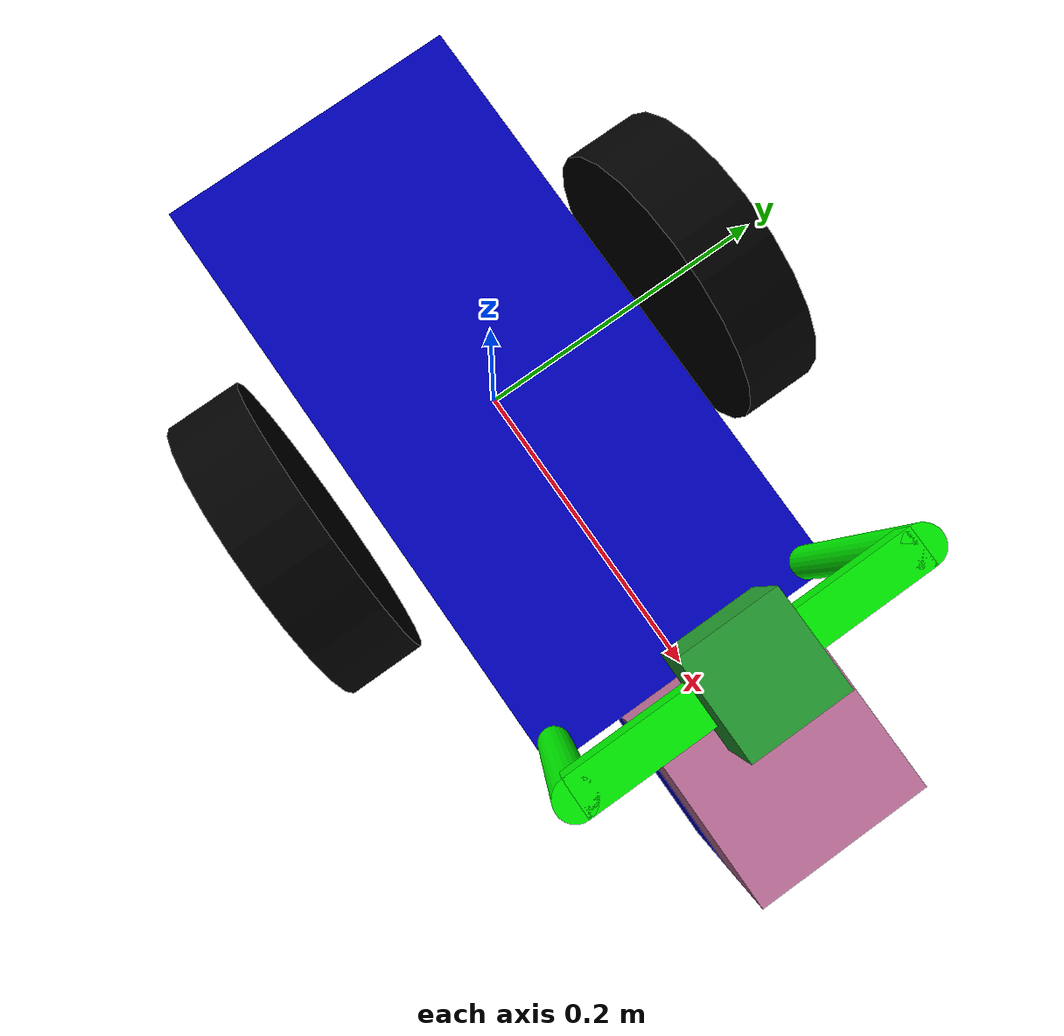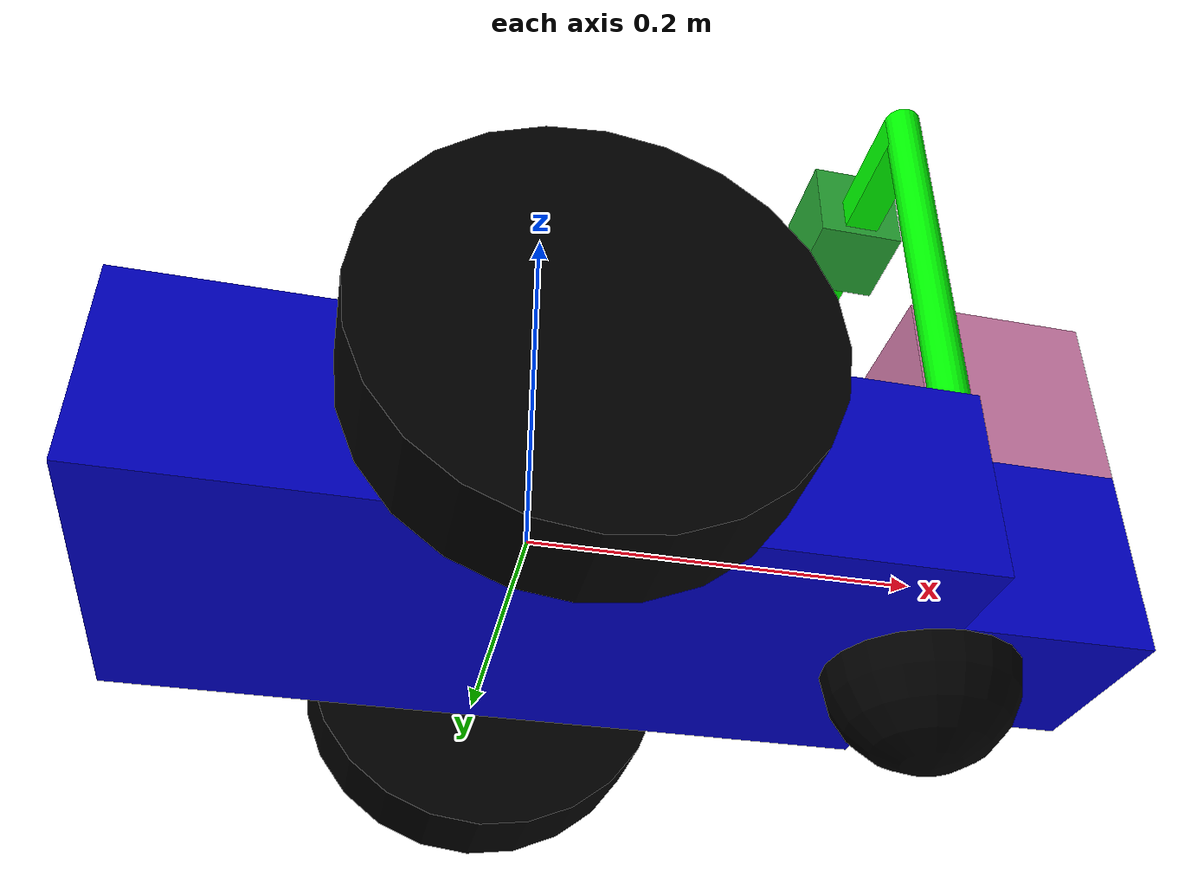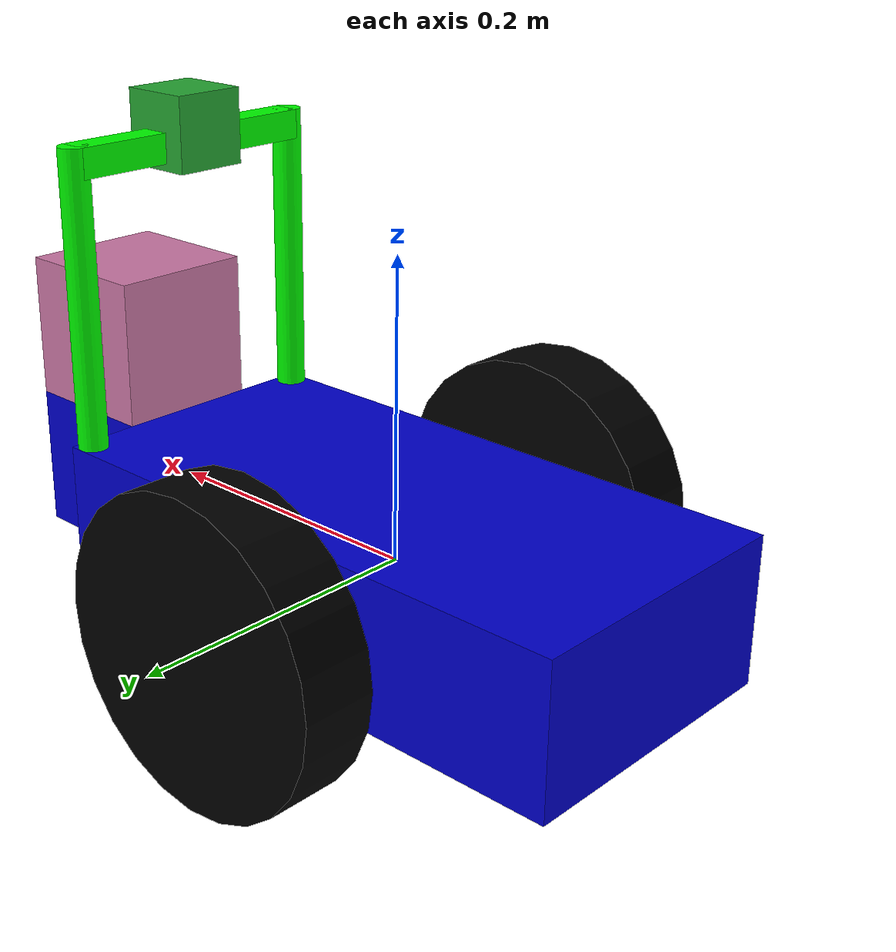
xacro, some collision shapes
<?xml version='1.0'?>

<robot name="sg_bot" xmlns:xacro="http://www.ros.org/wiki/xacro">

  <xacro:include filename="$(find sg_bot)/urdf/sg_bot.gazebo"/>

  <link name="robot_footprint"></link>

  <joint name="robot_footprint_joint" type="fixed">
    <origin xyz="0 0 0" rpy="0 0 0" />
    <parent link="robot_footprint"/>
    <child link="chassis" />
  </joint>

  <material name="blue">
    <color rgba="0 0 0.8 1"/>
  </material>
  <material name="green">
    <color rgba="0 1 0 1"/>
  </material>
  <material name="black">
    <color rgba="0 0 0 1"/>
  </material>
  <material name="white">
    <color rgba="1 1 1 1"/>
  </material>

  <link name='chassis'>
    <pose>0 0 0.1 0 0 0</pose>

    <inertial>
      <mass value="12.0"/>
      <origin xyz="0 0 0" rpy=" 0 0 0"/>
      <inertia
          ixx="0.1" ixy="0" ixz="0"
          iyy="0.1" iyz="0"
          izz="0.1"
      />
    </inertial>

    <collision name='collision'>
      <origin xyz="0 0 0" rpy=" 0 0 0"/>
      <geometry>
        <box size=".4 .2 .1"/>
      </geometry>
    </collision>

    <visual name='chassis_visual'>
      <origin xyz="0 0 0" rpy=" 0 0 0"/>
      <geometry>
        <box size=".4 .2 .1"/>
      </geometry>
      <material name="blue"/>
    </visual>

    <visual name='front_bump_visual'>
      <origin xyz="0.25 0 0" rpy=" 0 0 0"/>
      <geometry>
        <box size=".1 .1 .1"/>
      </geometry>
      <material name="blue"/>
    </visual>

    <collision name='front_bump_collision'>
      <origin xyz="0.25 0 0" rpy=" 0 0 0"/>
      <geometry>
        <box size=".1 .1 .1"/>
      </geometry>
    </collision>

    <visual name='front_left_cylinder_visual'>
	  <origin xyz="0.19 0.09 0.15" rpy=" 0 0 0"/>
      <geometry>
         <cylinder length="0.2" radius="0.01"/>
      </geometry>
      <material name="green"/>
    </visual>

	<collision name='front_left_cylinder_collision'>
      <origin xyz="0.19 0.09 0.15" rpy=" 0 0 0"/>
      <geometry>
        <cylinder length="0.2" radius="0.01"/>
      </geometry>
    </collision>

    <visual name='front_right_cylinder_visual'>
	  <origin xyz="0.19 -0.09 0.15" rpy=" 0 0 0"/>
      <geometry>
         <cylinder length="0.2" radius="0.01"/>
      </geometry>
      <material name="green"/>
    </visual>

	<collision name='front_right_cylinder_collision'>
      <origin xyz="0.19 -0.09 0.15" rpy=" 0 0 0"/>
      <geometry>
        <cylinder length="0.2" radius="0.01"/>
      </geometry>
    </collision>

    <visual name='front_top_box_visual'>
	  <origin xyz="0.19 0.0 0.24" rpy=" 0 0 -1.57075"/>
      <geometry>
         <box size=".18 .02 .02"/>
      </geometry>
      <material name="green"/>
    </visual>

	<collision name='front_top_box_collision'>
      <origin xyz="0.19 0.0 0.24" rpy=" 0 0 -1.57075"/>
      <geometry>
        <box size=".18 .02 .02"/>
      </geometry>
    </collision>

  </link>

  <link name="caster_wheel">
    <collision name='front_caster_collision'>
      <geometry>
        <sphere radius="0.0499"/>
      </geometry>
    </collision>

    <visual name='front_caster_visual'>
      <geometry>
        <sphere radius="0.05"/>
      </geometry>
      <material name="black"/>
    </visual>

    <inertial>
      <mass value="3"/>
      <inertia
          ixx="0.1" ixy="0" ixz="0"
          iyy="0.1" iyz="0"
          izz="0.1"/>
    </inertial>
  </link>

  <joint name="caster_fixed" type="fixed">
    <origin xyz="0.2 0 -0.05" rpy=" 0 0 0"/>
    <parent link="chassis"/>
    <child link="caster_wheel"/>
  </joint>

  <xacro:macro name="wheel" params="prefix reflect">
    <link name="${prefix}_wheel">
      <visual>
        <origin xyz="0 0 0" rpy="0 1.57075 1.57075"/>
        <geometry>
          <cylinder length="0.05" radius="0.1"/>
        </geometry>
        <material name="black"/>
      </visual>

      <collision>
        <origin xyz="0 0 0" rpy="0 1.57075 1.57075"/>
        <geometry>
          <cylinder length="0.05" radius="0.1"/>
        </geometry>
      </collision>

      <inertial>
        <mass value="5"/>
        <inertia
          ixx="0.1" ixy="0" ixz="0"
          iyy="0.1" iyz="0"
          izz="0.1"/>
      </inertial>
    </link>

    <joint type="continuous" name="${prefix}_wheel_hinge">
      <origin xyz="0.0 ${reflect*0.15} 0" rpy="0 0 0"/>
      <child link="${prefix}_wheel"/>
      <parent link="chassis"/>
      <axis xyz="0 1 0" rpy="0 0 0"/>
      <limit effort="10000" velocity="10000"/>
      <dynamics damping="1.0" friction="1.0"/>
    </joint>
  </xacro:macro>

  <xacro:wheel prefix="left" reflect="1" />
  <xacro:wheel prefix="right" reflect="-1" />

  <link name="camera">
    <visual>
      <origin xyz="0 0 0" rpy="0 0 0"/>
      <geometry>
        <box size="0.05 0.05 0.05"/>
      </geometry>
    </visual>

    <collision>
      <geometry>
        <box size="0.05 0.05 0.05" />
      </geometry>
    </collision>

    <inertial>
      <mass value="0.1"/>
      <inertia
        ixx="1e-6" ixy="0" ixz="0"
        iyy="1e-6" iyz="0"
        izz="1e-6" />
    </inertial>
  </link>

  <joint type="fixed" name="camera_joint">
    <origin xyz="0.19 0 0.25" rpy="0 0 0"/>
    <child link="camera"/>
    <parent link="chassis"/>
  </joint>

  <link name="hokuyo">
    <visual>
      <origin xyz="0 0 0" rpy="0 0 0"/>
      <geometry>
        <mesh filename="package://sg_bot/meshes/hokuyo.dae"/>
      </geometry>
    </visual>

    <collision>
      <geometry>
        <box size="0.1 0.1 0.1" />
      </geometry>
    </collision>

    <inertial>
      <mass value="0.1"/>
      <inertia
        ixx="1e-6" ixy="0" ixz="0"
        iyy="1e-6" iyz="0"
        izz="1e-6" />
    </inertial>
  </link>

  <joint type="fixed" name="hokuyo_joint">
    <origin xyz="0.25 0 0.1" rpy="0 0 0"/>
    <child link="hokuyo"/>
    <parent link="chassis"/>
  </joint>

</robot>
